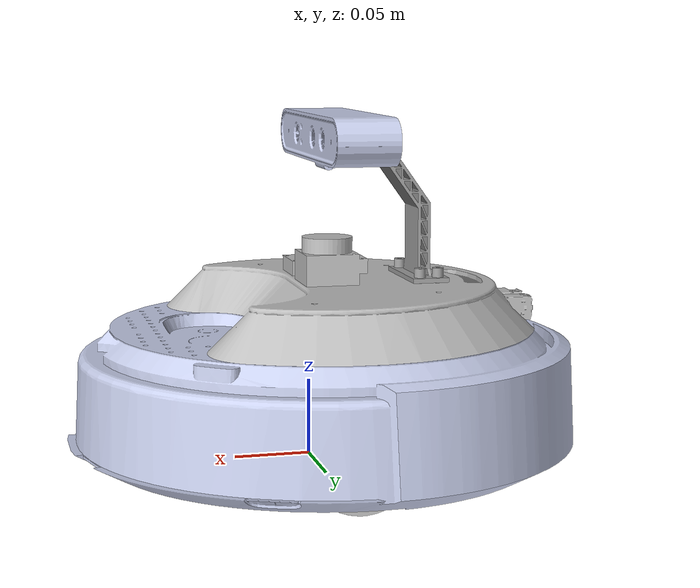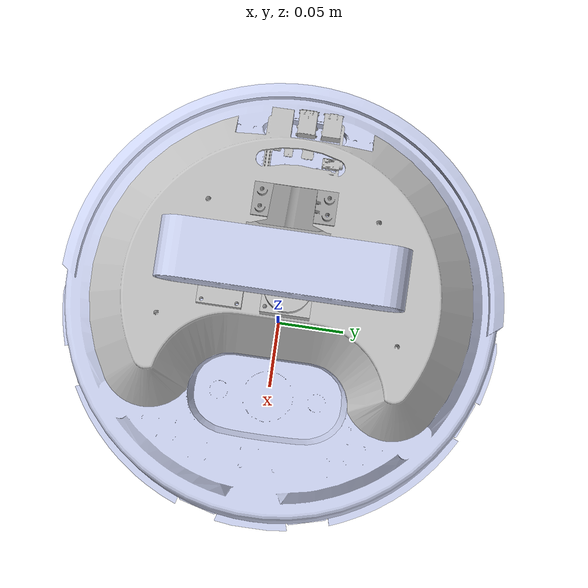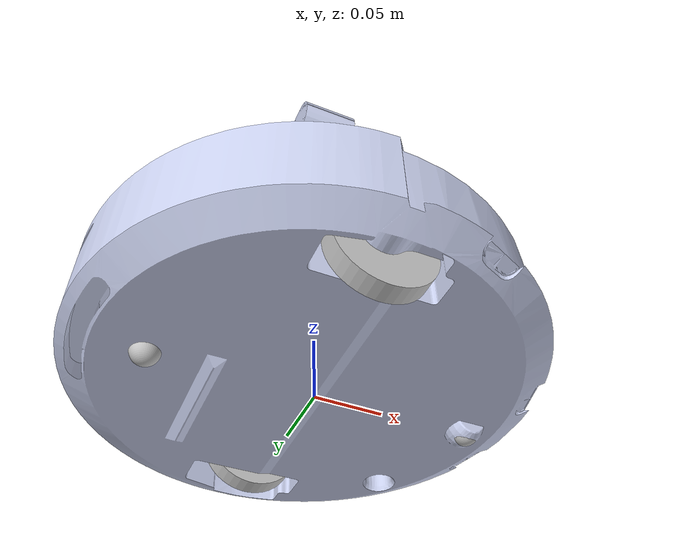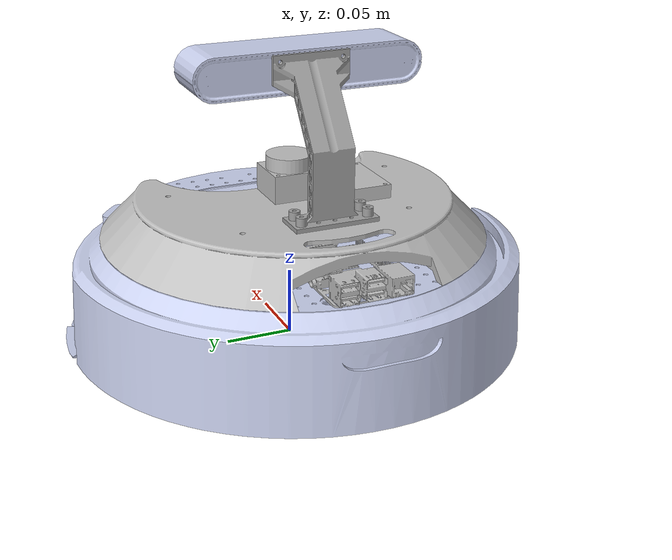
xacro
<?xml version="1.0"?>

<robot xmlns:xacro="http://www.ros.org/wiki/xacro"
  name="roomba">

  <!-- Links -->

  <!-- Base FootPrint Link -->
  <link name="base_footprint"/>

  <!-- Base Link -->
  <link name="base_link">
    <inertial>
      <origin xyz="0 0 0" rpy="0 0 0" />
      <mass value="0.0507186439358924" />
      <inertia ixx="0.00027049532304562" ixy="1.0184652408305E-07" ixz="3.11479800943731E-23" iyy="0.000230379794319657" iyz="-1.79969555498516E-24" izz="0.000500866664257955" />
    </inertial>
    <visual>
      <origin xyz="0 0 0" rpy="0 0 0" />
      <geometry>
        <mesh filename="package://roomba_description/meshes/base_link.STL" />
      </geometry>
      <material name="">
        <color rgba="0.792156862745098 0.819607843137255 0.933333333333333 1" />
      </material>
    </visual>
    <collision>
      <origin xyz="0 0 0" rpy="0 0 0" />
      <geometry>
        <mesh filename="package://roomba_description/meshes/base_link.STL" />
      </geometry>
    </collision>
  </link>

  <!-- Head Link -->
  <link
    name="head_link">
    <inertial>
      <origin
        xyz="-0.0166927310179169 -0.000209984417467002 0.0164560109076421"
        rpy="0 0 0" />
      <mass
        value="0.256075063957645" />
      <inertia
        ixx="0.00161176755917425"
        ixy="-8.18766588309404E-08"
        ixz="5.46013238422469E-06"
        iyy="0.000805062871601863"
        iyz="-2.47490805257779E-09"
        izz="0.0023986270923905" />
    </inertial>
    <visual>
      <origin
        xyz="0 0 0"
        rpy="0 0 0" />
      <geometry>
        <mesh
          filename="package://roomba_description/meshes/head_link.STL" />
      </geometry>
      <material
        name="">
        <color
          rgba="0.749019607843137 0.749019607843137 0.749019607843137 1" />
      </material>
    </visual>
    <collision>
      <origin
        xyz="0 0 0"
        rpy="0 0 0" />
      <geometry>
        <mesh
          filename="package://roomba_description/meshes/head_link.STL" />
      </geometry>
    </collision>
  </link>

  <!-- CBase Link -->
  <link
    name="cbase_link">
    <inertial>
      <origin
        xyz="0.0155582295915918 -4.36055885844056E-10 0.049229551415042"
        rpy="0 0 0" />
      <mass
        value="0.0291832720169813" />
      <inertia
        ixx="4.08508080716264E-05"
        ixy="6.74318836739577E-14"
        ixz="-1.53438886920864E-05"
        iyy="4.51475174862487E-05"
        iyz="5.13267733656048E-13"
        izz="1.40663498849746E-05" />
    </inertial>
    <visual>
      <origin
        xyz="0 0 0"
        rpy="0 0 0" />
      <geometry>
        <mesh
          filename="package://roomba_description/meshes/cbase_link.STL" />
      </geometry>
      <material
        name="">
        <color
          rgba="0.627450980392157 0.627450980392157 0.627450980392157 1" />
      </material>
    </visual>
    <collision>
      <origin
        xyz="0 0 0"
        rpy="0 0 0" />
      <geometry>
        <mesh
          filename="package://roomba_description/meshes/cbase_link.STL" />
      </geometry>
    </collision>
  </link>

  <!-- Laser Link -->
  <link
    name="laser_link">
    <inertial>
      <origin
        xyz="-0.00325618278851393 -0.0156147178070151 -0.0140533101149626"
        rpy="0 0 0" />
      <mass
        value="0.0491274993217521" />
      <inertia
        ixx="6.83938204556318E-06"
        ixy="-5.61977433188601E-08"
        ixz="5.04974936140186E-10"
        iyy="9.0569677553162E-06"
        iyz="1.49730447984284E-10"
        izz="1.10223942588917E-05" />
    </inertial>
    <visual>
      <origin
        xyz="0 0 0"
        rpy="0 0 0" />
      <geometry>
        <mesh
          filename="package://roomba_description/meshes/laser_link.STL" />
      </geometry>
      <material
        name="">
        <color
          rgba="0.749019607843137 0.749019607843137 0.749019607843137 1" />
      </material>
    </visual>
    <collision>
      <origin
        xyz="0 0 0"
        rpy="0 0 0" />
      <geometry>
        <mesh
          filename="package://roomba_description/meshes/laser_link.STL" />
      </geometry>
    </collision>
  </link>

  <!-- Camera Link -->
  <link
    name="camera_link">
    <inertial>
      <origin
        xyz="-0.0190723520728568 0.000439583384630932 -8.51448129600141E-05"
        rpy="0 0 0" />
      <mass
        value="0.182525153723224" />
      <inertia
        ixx="0.000397614971910582"
        ixy="3.33789605223511E-08"
        ixz="1.32163822615461E-07"
        iyy="3.58585683764839E-05"
        iyz="1.53468627213694E-10"
        izz="0.000406220287804077" />
    </inertial>
    <visual>
      <origin
        xyz="0 0 0"
        rpy="0 0 0" />
      <geometry>
        <mesh
          filename="package://roomba_description/meshes/camera_link.STL" />
      </geometry>
      <material
        name="">
        <color
          rgba="0.792156862745098 0.819607843137255 0.933333333333333 1" />
      </material>
    </visual>
    <collision>
      <origin
        xyz="0 0 0"
        rpy="0 0 0" />
      <geometry>
        <mesh
          filename="package://roomba_description/meshes/camera_link.STL" />
      </geometry>
    </collision>
  </link>

  <!-- Right Link -->
  <link
    name="right_link">
    <inertial>
      <origin
        xyz="0 -2.77555756156289E-17 -3.46944695195361E-18"
        rpy="0 0 0" />
      <mass
        value="0.0610725611857856" />
      <inertia
        ixx="2.0932620346428E-05"
        ixy="-5.04870979341448E-29"
        ixz="-1.19131885649342E-20"
        iyy="2.0932620346428E-05"
        iyz="9.32147423146491E-19"
        izz="3.9575019648389E-05" />
    </inertial>
    <visual>
      <origin
        xyz="0 0 0"
        rpy="0 0 0" />
      <geometry>
        <mesh
          filename="package://roomba_description/meshes/right_link.STL" />
      </geometry>
      <material
        name="">
        <color
          rgba="0.749019607843137 0.749019607843137 0.749019607843137 1" />
      </material>
    </visual>
    <collision>
      <origin
        xyz="0 0 0"
        rpy="0 0 0" />
      <geometry>
        <cylinder radius="0.036" length="0.015" />
      </geometry>
    </collision>
  </link>

  <!-- Left Link -->
  <link
    name="left_link">
    <inertial>
      <origin
        xyz="0 0 0"
        rpy="0 0 0" />
      <mass
        value="0.0610725611857856" />
      <inertia
        ixx="2.0932620346428E-05"
        ixy="5.9162804616133E-34"
        ixz="6.89957403534514E-21"
        iyy="2.0932620346428E-05"
        iyz="9.32147422637481E-19"
        izz="3.95750196483891E-05" />
    </inertial>
    <visual>
      <origin
        xyz="0 0 0"
        rpy="0 0 0" />
      <geometry>
        <mesh
          filename="package://roomba_description/meshes/left_link.STL" />
      </geometry>
      <material
        name="">
        <color
          rgba="0.749019607843137 0.749019607843137 0.749019607843137 1" />
      </material>
    </visual>
    <collision>
      <origin
        xyz="0 0 0"
        rpy="0 0 0" />
      <geometry>
        <cylinder radius="0.036" length="0.015" />
      </geometry>
    </collision>
  </link>

  <!-- Front Link -->
  <link
    name="front_link">
    <inertial>
      <origin
        xyz="0 0 0"
        rpy="0 0 0" />
      <mass
        value="0.00502921680620392" />
      <inertia
        ixx="2.27248756479945E-07"
        ixy="0"
        ixz="-1.27098804731044E-39"
        iyy="2.27248756479945E-07"
        iyz="-3.58732393405981E-40"
        izz="2.27248756479945E-07" />
    </inertial>
    <visual>
      <origin
        xyz="0 0 0"
        rpy="0 0 0" />
      <geometry>
        <mesh
          filename="package://roomba_description/meshes/front_link.STL" />
      </geometry>
      <material
        name="">
        <color
          rgba="0.749019607843137 0.749019607843137 0.749019607843137 1" />
      </material>
    </visual>
    <collision>
      <origin
        xyz="0 0 0"
        rpy="0 0 0" />
      <geometry>
        <sphere radius="0.010628" />
      </geometry>
    </collision>
  </link>

  <!-- Back Link -->
  <link
    name="back_link">
    <inertial>
      <origin
        xyz="0 0 0"
        rpy="0 0 0" />
      <mass
        value="0.00502921680620392" />
      <inertia
        ixx="2.27248756479945E-07"
        ixy="-8.27180612553028E-25"
        ixz="1.10838339471576E-32"
        iyy="2.27248756479945E-07"
        iyz="1.27308116622745E-32"
        izz="2.27248756479945E-07" />
    </inertial>
    <visual>
      <origin
        xyz="0 0 0"
        rpy="0 0 0" />
      <geometry>
        <mesh
          filename="package://roomba_description/meshes/back_link.STL" />
      </geometry>
      <material
        name="">
        <color
          rgba="0.749019607843137 0.749019607843137 0.749019607843137 1" />
      </material>
    </visual>
    <collision>
      <origin
        xyz="0 0 0"
        rpy="0 0 0" />
      <geometry>
        <sphere radius="0.010628" />
      </geometry>
    </collision>
  </link>

  <!-- IMU Link -->
  <link name="imu_link"/>

  <!-- Joints -->
  <!-- Base Joints -->
  <joint name="base_joint" type="fixed">
    <origin xyz="0 0 0.00191" rpy="0 0 0" />
    <parent link="base_footprint" />
    <child link="base_link" />
  </joint>

  <!-- Head Joints -->
  <joint
    name="head_joint"
    type="fixed">
    <origin
      xyz="-0.0085063 0.00096882 0.0855"
      rpy="0 0 0" />
    <parent
      link="base_link" />
    <child
      link="head_link" />
  </joint>

  <!-- CBase Joints -->
  <joint
    name="cbase_joint"
    type="fixed">
    <origin
      xyz="-0.074418 0.0009688 0.1175"
      rpy="0 0 0" />
    <parent
      link="base_link" />
    <child
      link="cbase_link" />
  </joint>

  <!-- Camera Joints -->
  <joint
    name="camera_joint"
    type="fixed">
    <origin
      xyz="0 0 0.2081"
      rpy="0 0 0" />
    <parent
      link="base_link" />
    <child
      link="camera_link" />
  </joint>

  <!-- Laser Joints -->
  <joint
    name="laser_joint"
    type="fixed">
    <origin
      xyz="-0.011043 0.0052038 0.1385"
      rpy="0 0 0" />
    <parent
      link="base_link" />
    <child
      link="laser_link" />
  </joint>

  <!-- Left Joints -->
  <joint
    name="left_joint"
    type="continuous">
    <origin
      xyz="-0.0052123 0.11547 0.02702"
      rpy="-1.5708 0 0" />
    <parent
      link="base_link" />
    <child
      link="left_link" />
    <axis
      xyz="0 0 1" />
  </joint>
  <!-- Right Joints -->
  <joint
    name="right_joint"
    type="continuous">
    <origin
      xyz="-0.00524 -0.11353 0.026978"
      rpy="-1.5708 0 0" />
    <parent
      link="base_link" />
    <child
      link="right_link" />
    <axis
      xyz="0 0 1" />
  </joint>

  <!-- Front Joints -->
  <joint
    name="front_joint"
    type="fixed">
    <origin
      xyz="0.11749 0.00096884 0.002"
      rpy="-1.5708 0 0" />
    <parent
      link="base_link" />
    <child
      link="front_link" />
  </joint>
  <!-- Back Joints -->
  <joint
    name="back_joint"
    type="fixed">
    <origin
      xyz="-0.11659 0.00096884 0.0019838"
      rpy="-1.5708 0.034034 0" />
    <parent
      link="base_link" />
    <child
      link="back_link" />
  </joint>

  <!-- IMU Joints -->
  <joint name="imu_joint" type="fixed">
    <parent link="base_link"/>
    <child link="imu_link"/>
    <origin xyz="-0.032 0 0.068" rpy="0 0 0"/>
  </joint>

  <!-- Configuration Wheels -->
  <gazebo reference="left_link">
    <mu1>10000.0</mu1>
    <mu2>10000.0</mu2>
    <kp>3000000.0</kp>
    <kd>90.0</kd>
    <minDepth>0.001</minDepth>
    <maxVel>0.1</maxVel>
    <fdir1>1 0 0</fdir1>
    <material>Gazebo/FlatBlack</material>
  </gazebo>

  <gazebo reference="right_link">
    <mu1>10000.0</mu1>
    <mu2>10000.0</mu2>
    <kp>3000000.0</kp>
    <kd>90.0</kd>
    <minDepth>0.001</minDepth>
    <maxVel>0.1</maxVel>
    <fdir1>1 0 0</fdir1>
    <material>Gazebo/FlatBlack</material>
  </gazebo>

  <gazebo reference="front_link">
    <mu1>0.1</mu1>
    <mu2>0.1</mu2>
    <material>Gazebo/FlatBlack</material>
  </gazebo>

  <gazebo reference="back_link">
    <mu1>0.0001</mu1>
    <mu2>0.0001</mu2>
    <material>Gazebo/FlatBlack</material>
  </gazebo>

  <!-- Plugin -->
  <gazebo>
    <!-- Plugin control ruedas diferenciales -->
    <plugin name="wheel_drive_controller" filename="libgazebo_ros_diff_drive.so">
      <ros>
        <namespace></namespace>
        <remapping>cmd_vel:=cmd_vel</remapping>
        <remapping>odom:=odom</remapping>
      </ros>
      <update_rate>1</update_rate>
      <left_joint>left_joint</left_joint>
      <right_joint>right_joint</right_joint>
      <wheel_separation>0.229</wheel_separation>
      <wheel_diameter>0.072</wheel_diameter>
      <max_wheel_torque>10</max_wheel_torque>
      <max_wheel_acceleration>1.0</max_wheel_acceleration>
      <publish_odom>true</publish_odom>
      <publish_odom_tf>true</publish_odom_tf>
      <publish_wheel_tf>true</publish_wheel_tf>
      <odometry_frame>odom</odometry_frame>
      <robot_base_frame>base_footprint</robot_base_frame>
    </plugin>
  </gazebo>

  <!-- ***** GAZEBO LASER ****** -->
  <gazebo reference="laser_link">
    <material>Gazebo/FlatBlack</material>
    <sensor type="ray" name="lds_lfcd_sensor">
      <pose>0 0 0 0 0 0</pose>
      <always_on>true</always_on>
      <update_rate>10.0</update_rate>
      <visualize>true</visualize>
      <ray>
        <scan>
          <horizontal>
            <samples>360</samples>
            <resolution>1</resolution>
            <min_angle>0.0</min_angle>
            <max_angle>6.28319</max_angle>
          </horizontal>
        </scan>
        <range>
          <min>0.120</min>
          <max>1.5</max>
          <resolution>0.015</resolution>
        </range>
        <noise>
          <type>gaussian</type>
          <mean>0.0</mean>
          <stddev>0.01</stddev>
        </noise>
      </ray>
      <plugin name="gazebo_ros_lds_lfcd_controller" filename="libgazebo_ros_ray_sensor.so">
        <ros>
          <namespace></namespace>
          <remapping>~/out:=scan</remapping>
        </ros>
        <output_type>sensor_msgs/LaserScan</output_type>
      </plugin>
    </sensor>
  </gazebo>

  <!-- **** GAZEBO CAM_LINK **** -->
  <gazebo reference="camera_link">
      <material>Gazebo/Black</material>
      <sensor name="camera" type="camera">
        <pose> 0 0 0 0 0 0 </pose>
        <visualize>true</visualize>
        <update_rate>30</update_rate>
        <camera>
            <horizontal_fov>1.085595</horizontal_fov>
            <image>
                <format>R8G8B8</format>
                <width>640</width>
                <height>480</height>
            </image>
            <clip>
                <near>0.03</near>
                <far>100</far>
            </clip>
        </camera>
        <plugin name="camera_controller" filename="libgazebo_ros_camera.so">
            <frame_name>camera_link</frame_name>
        </plugin>
      </sensor>
      <sensor name="intel_realsense_d435_depth" type="depth">
        <pose> 0 0 0 0 0 0 </pose>
        <always_on>true</always_on>
        <update_rate>20</update_rate>
        <camera name="realsense_depth_camera">
        </camera>
        <plugin name="intel_realsense_d435_depth_driver" filename="libgazebo_ros_camera.so">
            <camera_name>intel_realsense_d435_depth</camera_name>
            <frame_name>camera_link</frame_name>
            <hack_baseline>0.07</hack_baseline>
            <min_depth>0.001</min_depth>
          </plugin>
      </sensor>
  </gazebo>

  <!-- **** GAZEBO IMU_LINK **** -->
  <gazebo reference="imu_link">
    <material>Gazebo/Grey</material>
    <sensor type="imu" name="imu">
      <always_on>true</always_on>
      <update_rate>100.0</update_rate>
      <visualize>true</visualize>
    </sensor>
  </gazebo>

</robot>
